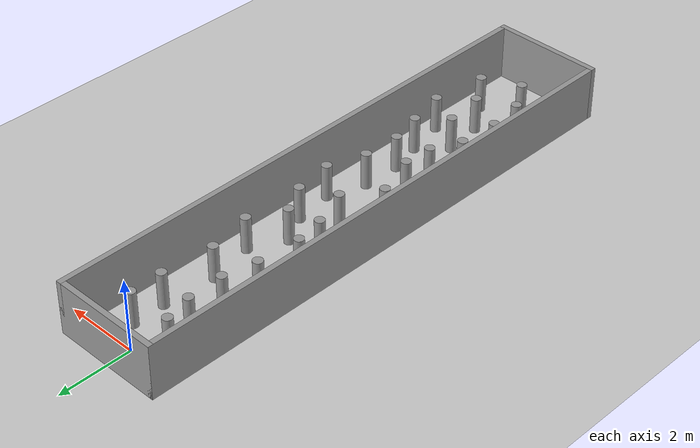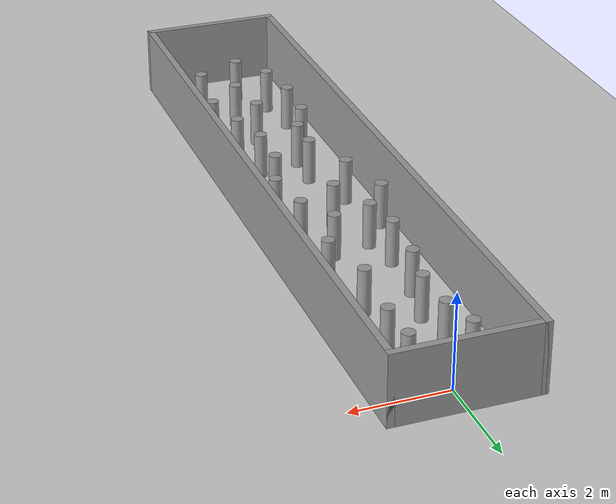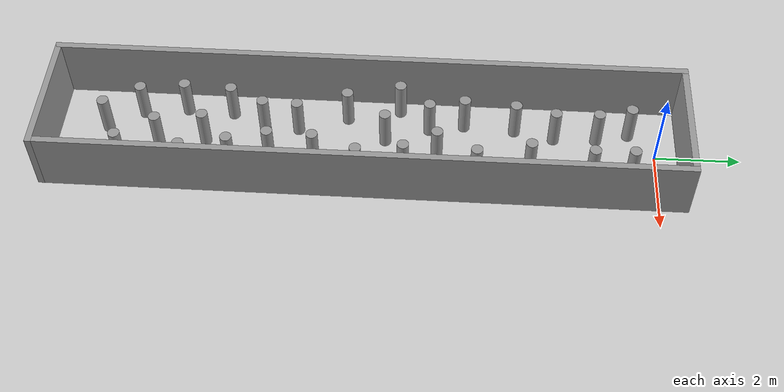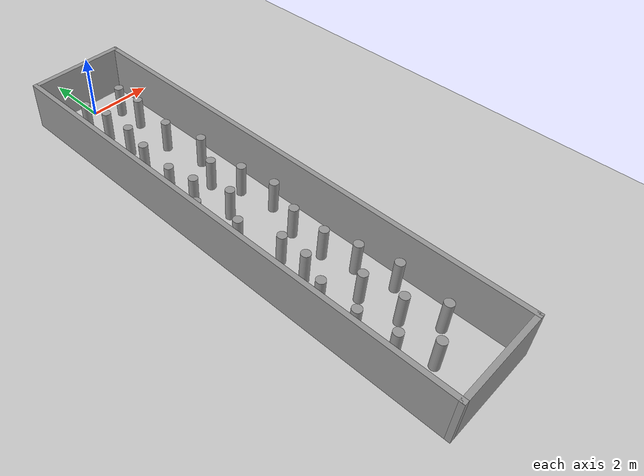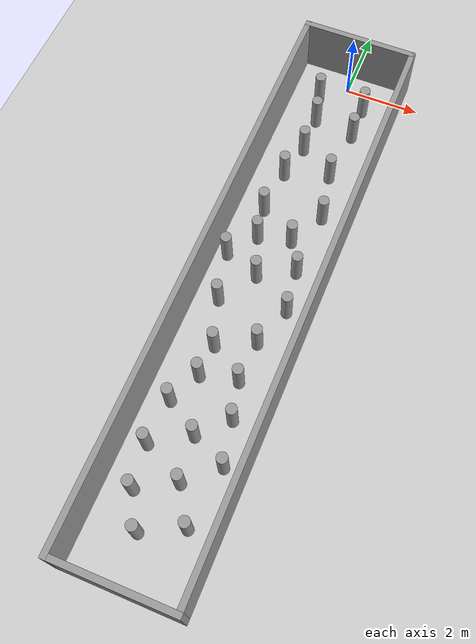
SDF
<sdf version="1.7">
 <world name="default">
  <light name="sun" type="directional">
   <pose>0 0 10 0 -0 0</pose>
   <diffuse>0.8 0.8 0.8 1</diffuse>
   <specular>0.2 0.2 0.2 1</specular>
   <attenuation>
    <range>1000</range>
    <constant>0.9</constant>
    <linear>0.01</linear>
    <quadratic>0.001</quadratic>
   </attenuation>
   <direction>-0.5 0.1 -0.9</direction>
   <spot><inner_angle>0</inner_angle><outer_angle>0</outer_angle><falloff>0</falloff></spot>
  </light>
  <model name="ground_plane">
   <static>1</static>
   <link name="link">
    <collision name="collision">
     <geometry><plane><normal>0 0 1</normal><size>100 100</size></plane></geometry>
     <surface><friction><ode><mu>100</mu><mu2>50</mu2></ode></friction></surface>
    </collision>
    <visual name="visual">
     <cast_shadows>0</cast_shadows>
     <geometry><plane><normal>0 0 1</normal><size>100 100</size></plane></geometry>
     <material>
      <script><uri>file://media/materials/scripts/gazebo.material</uri><name>Gazebo/Grey</name></script>
     </material>
    </visual>
   </link>
  </model>
  <gravity>0 0 -9.8</gravity>
  <magnetic_field>6e-06 2.3e-05 -4.2e-05</magnetic_field>
  <atmosphere type="adiabatic"/>
  <physics type="ode">
   <max_step_size>0.001</max_step_size>
   <real_time_factor>1</real_time_factor>
   <real_time_update_rate>1000</real_time_update_rate>
  </physics>
  <scene><ambient>0.4 0.4 0.4 1</ambient><background>0.7 0.7 0.7 1</background><shadows>1</shadows></scene>
  <spherical_coordinates>
   <surface_model>EARTH_WGS84</surface_model>
   <latitude_deg>0</latitude_deg>
   <longitude_deg>0</longitude_deg>
   <elevation>0</elevation>
   <heading_deg>0</heading_deg>
  </spherical_coordinates>
  <model name="long">
   <pose>0.004691 -6.82548 0 0 -0 0</pose>
   <link name="Wall_10">
    <collision name="Wall_10_Collision">
     <geometry><box><size>3.08 0.15 1.5</size></box></geometry>
     <pose>0 0 0.75 0 -0 0</pose>
    </collision>
    <visual name="Wall_10_Visual">
     <pose>0 0 0.75 0 -0 0</pose>
     <geometry><box><size>3.08 0.15 1.5</size></box></geometry>
     <material>
      <script><uri>file://media/materials/scripts/gazebo.material</uri><name>Gazebo/Grey</name></script>
      <ambient>1 1 1 1</ambient>
     </material>
     <meta><layer>0</layer></meta>
    </visual>
    <pose>-0 7.425 0 0 -0 0</pose>
   </link>
   <link name="Wall_7">
    <collision name="Wall_7_Collision">
     <geometry><box><size>15 0.15 1.5</size></box></geometry>
     <pose>0 0 0.75 0 -0 0</pose>
    </collision>
    <visual name="Wall_7_Visual">
     <pose>0 0 0.75 0 -0 0</pose>
     <geometry><box><size>15 0.15 1.5</size></box></geometry>
     <material>
      <script><uri>file://media/materials/scripts/gazebo.material</uri><name>Gazebo/Grey</name></script>
      <ambient>1 1 1 1</ambient>
     </material>
     <meta><layer>0</layer></meta>
    </visual>
    <pose>1.465 0 0 0 -0 -1.5708</pose>
   </link>
   <link name="Wall_8">
    <collision name="Wall_8_Collision">
     <geometry><box><size>3.08 0.15 1.5</size></box></geometry>
     <pose>0 0 0.75 0 -0 0</pose>
    </collision>
    <visual name="Wall_8_Visual">
     <pose>0 0 0.75 0 -0 0</pose>
     <geometry><box><size>3.08 0.15 1.5</size></box></geometry>
     <material>
      <script><uri>file://media/materials/scripts/gazebo.material</uri><name>Gazebo/Grey</name></script>
      <ambient>1 1 1 1</ambient>
     </material>
     <meta><layer>0</layer></meta>
    </visual>
    <pose>-0 -7.425 0 0 -0 3.14159</pose>
   </link>
   <link name="Wall_9">
    <collision name="Wall_9_Collision">
     <geometry><box><size>15 0.15 1.5</size></box></geometry>
     <pose>0 0 0.75 0 -0 0</pose>
    </collision>
    <visual name="Wall_9_Visual">
     <pose>0 0 0.75 0 -0 0</pose>
     <geometry><box><size>15 0.15 1.5</size></box></geometry>
     <material>
      <script><uri>file://media/materials/scripts/gazebo.material</uri><name>Gazebo/Grey</name></script>
      <ambient>1 1 1 1</ambient>
     </material>
     <meta><layer>0</layer></meta>
    </visual>
    <pose>-1.465 0 0 0 -0 1.5708</pose>
   </link>
   <static>1</static>
  </model>
  <model name="unit_cylinder">
   <pose>0.623945 -0.599358 0.499994 0 -0 -1e-06</pose>
   <link name="link">
    <inertial>
     <mass>1</mass>
     <inertia><ixx>0.145833</ixx><ixy>0</ixy><ixz>0</ixz><iyy>0.145833</iyy><iyz>0</iyz><izz>0.125</izz></inertia>
    </inertial>
    <collision name="collision">
     <geometry><cylinder><radius>0.136863</radius><length>1</length></cylinder></geometry>
    </collision>
    <visual name="visual">
     <geometry><cylinder><radius>0.136863</radius><length>1</length></cylinder></geometry>
     <material>
      <script><name>Gazebo/Grey</name><uri>file://media/materials/scripts/gazebo.material</uri></script>
     </material>
    </visual>
   </link>
  </model>
  <model name="unit_cylinder_clone">
   <pose>-0.627701 -0.597509 0.499996 0 -0 0</pose>
   <link name="link">
    <inertial>
     <mass>1</mass>
     <inertia><ixx>0.145833</ixx><ixy>0</ixy><ixz>0</ixz><iyy>0.145833</iyy><iyz>0</iyz><izz>0.125</izz></inertia>
    </inertial>
    <collision name="collision">
     <geometry><cylinder><radius>0.136863</radius><length>1</length></cylinder></geometry>
    </collision>
    <visual name="visual">
     <geometry><cylinder><radius>0.136863</radius><length>1</length></cylinder></geometry>
     <material>
      <script><name>Gazebo/Grey</name><uri>file://media/materials/scripts/gazebo.material</uri></script>
     </material>
    </visual>
   </link>
  </model>
  <model name="unit_cylinder_clone_0">
   <pose>-0.437108 -1.36673 0.499992 -0 -0 -6e-06</pose>
   <link name="link">
    <inertial>
     <mass>1</mass>
     <inertia><ixx>0.145833</ixx><ixy>0</ixy><ixz>0</ixz><iyy>0.145833</iyy><iyz>0</iyz><izz>0.125</izz></inertia>
    </inertial>
    <collision name="collision">
     <geometry><cylinder><radius>0.136863</radius><length>1</length></cylinder></geometry>
    </collision>
    <visual name="visual">
     <geometry><cylinder><radius>0.136863</radius><length>1</length></cylinder></geometry>
     <material>
      <script><name>Gazebo/Grey</name><uri>file://media/materials/scripts/gazebo.material</uri></script>
     </material>
    </visual>
   </link>
  </model>
  <model name="unit_cylinder_clone_1">
   <pose>0.640928 -1.51062 0.499992 0 -0 1.2e-05</pose>
   <link name="link">
    <inertial>
     <mass>1</mass>
     <inertia><ixx>0.145833</ixx><ixy>0</ixy><ixz>0</ixz><iyy>0.145833</iyy><iyz>0</iyz><izz>0.125</izz></inertia>
    </inertial>
    <collision name="collision">
     <geometry><cylinder><radius>0.136863</radius><length>1</length></cylinder></geometry>
    </collision>
    <visual name="visual">
     <geometry><cylinder><radius>0.136863</radius><length>1</length></cylinder></geometry>
     <material>
      <script><name>Gazebo/Grey</name><uri>file://media/materials/scripts/gazebo.material</uri></script>
     </material>
    </visual>
   </link>
  </model>
  <model name="unit_cylinder_clone_2">
   <pose>-0.41189 -2.37573 0.499996 0 -0 0</pose>
   <link name="link">
    <inertial>
     <mass>1</mass>
     <inertia><ixx>0.145833</ixx><ixy>0</ixy><ixz>0</ixz><iyy>0.145833</iyy><iyz>0</iyz><izz>0.125</izz></inertia>
    </inertial>
    <collision name="collision">
     <geometry><cylinder><radius>0.136863</radius><length>1</length></cylinder></geometry>
    </collision>
    <visual name="visual">
     <geometry><cylinder><radius>0.136863</radius><length>1</length></cylinder></geometry>
     <material>
      <script><name>Gazebo/Grey</name><uri>file://media/materials/scripts/gazebo.material</uri></script>
     </material>
    </visual>
   </link>
  </model>
  <model name="unit_cylinder_clone_3">
   <pose>0.521619 -2.95274 0.499994 0 -0 0</pose>
   <link name="link">
    <inertial>
     <mass>1</mass>
     <inertia><ixx>0.145833</ixx><ixy>0</ixy><ixz>0</ixz><iyy>0.145833</iyy><iyz>0</iyz><izz>0.125</izz></inertia>
    </inertial>
    <collision name="collision">
     <geometry><cylinder><radius>0.136863</radius><length>1</length></cylinder></geometry>
    </collision>
    <visual name="visual">
     <geometry><cylinder><radius>0.136863</radius><length>1</length></cylinder></geometry>
     <material>
      <script><name>Gazebo/Grey</name><uri>file://media/materials/scripts/gazebo.material</uri></script>
     </material>
    </visual>
   </link>
  </model>
  <model name="unit_cylinder_clone_4">
   <pose>-0.604003 -3.30381 0.499996 0 -0 0</pose>
   <link name="link">
    <inertial>
     <mass>1</mass>
     <inertia><ixx>0.145833</ixx><ixy>0</ixy><ixz>0</ixz><iyy>0.145833</iyy><iyz>0</iyz><izz>0.125</izz></inertia>
    </inertial>
    <collision name="collision">
     <geometry><cylinder><radius>0.136863</radius><length>1</length></cylinder></geometry>
    </collision>
    <visual name="visual">
     <geometry><cylinder><radius>0.136863</radius><length>1</length></cylinder></geometry>
     <material>
      <script><name>Gazebo/Grey</name><uri>file://media/materials/scripts/gazebo.material</uri></script>
     </material>
    </visual>
   </link>
  </model>
  <model name="unit_cylinder_clone_5">
   <pose>0.776809 -4.20052 0.499999 0 0 -6e-06</pose>
   <link name="link">
    <inertial>
     <mass>1</mass>
     <inertia><ixx>0.145833</ixx><ixy>0</ixy><ixz>0</ixz><iyy>0.145833</iyy><iyz>0</iyz><izz>0.125</izz></inertia>
    </inertial>
    <collision name="collision">
     <geometry><cylinder><radius>0.136863</radius><length>1</length></cylinder></geometry>
    </collision>
    <visual name="visual">
     <geometry><cylinder><radius>0.136863</radius><length>1</length></cylinder></geometry>
     <material>
      <script><name>Gazebo/Grey</name><uri>file://media/materials/scripts/gazebo.material</uri></script>
     </material>
    </visual>
   </link>
  </model>
  <model name="unit_cylinder_clone_6">
   <pose>-0.691562 -4.50897 0.499994 0 -0 -1e-06</pose>
   <link name="link">
    <inertial>
     <mass>1</mass>
     <inertia><ixx>0.145833</ixx><ixy>0</ixy><ixz>0</ixz><iyy>0.145833</iyy><iyz>0</iyz><izz>0.125</izz></inertia>
    </inertial>
    <collision name="collision">
     <geometry><cylinder><radius>0.136863</radius><length>1</length></cylinder></geometry>
    </collision>
    <visual name="visual">
     <geometry><cylinder><radius>0.136863</radius><length>1</length></cylinder></geometry>
     <material>
      <script><name>Gazebo/Grey</name><uri>file://media/materials/scripts/gazebo.material</uri></script>
     </material>
    </visual>
   </link>
  </model>
  <model name="unit_cylinder_clone_7">
   <pose>0.298292 -5.12986 0.499996 0 0 -1e-06</pose>
   <link name="link">
    <inertial>
     <mass>1</mass>
     <inertia><ixx>0.145833</ixx><ixy>0</ixy><ixz>0</ixz><iyy>0.145833</iyy><iyz>0</iyz><izz>0.125</izz></inertia>
    </inertial>
    <collision name="collision">
     <geometry><cylinder><radius>0.136863</radius><length>1</length></cylinder></geometry>
    </collision>
    <visual name="visual">
     <geometry><cylinder><radius>0.136863</radius><length>1</length></cylinder></geometry>
     <material>
      <script><name>Gazebo/Grey</name><uri>file://media/materials/scripts/gazebo.material</uri></script>
     </material>
    </visual>
   </link>
  </model>
  <model name="unit_cylinder_clone_8">
   <pose>-0.536818 -5.33411 0.499992 0 -0 -5e-06</pose>
   <link name="link">
    <inertial>
     <mass>1</mass>
     <inertia><ixx>0.145833</ixx><ixy>0</ixy><ixz>0</ixz><iyy>0.145833</iyy><iyz>0</iyz><izz>0.125</izz></inertia>
    </inertial>
    <collision name="collision">
     <geometry><cylinder><radius>0.136863</radius><length>1</length></cylinder></geometry>
    </collision>
    <visual name="visual">
     <geometry><cylinder><radius>0.136863</radius><length>1</length></cylinder></geometry>
     <material>
      <script><name>Gazebo/Grey</name><uri>file://media/materials/scripts/gazebo.material</uri></script>
     </material>
    </visual>
   </link>
  </model>
  <model name="unit_cylinder_clone_9">
   <pose>0.725632 -5.89704 0.499996 0 0 -1e-06</pose>
   <link name="link">
    <inertial>
     <mass>1</mass>
     <inertia><ixx>0.145833</ixx><ixy>0</ixy><ixz>0</ixz><iyy>0.145833</iyy><iyz>0</iyz><izz>0.125</izz></inertia>
    </inertial>
    <collision name="collision">
     <geometry><cylinder><radius>0.136863</radius><length>1</length></cylinder></geometry>
    </collision>
    <visual name="visual">
     <geometry><cylinder><radius>0.136863</radius><length>1</length></cylinder></geometry>
     <material>
      <script><name>Gazebo/Grey</name><uri>file://media/materials/scripts/gazebo.material</uri></script>
     </material>
    </visual>
   </link>
  </model>
  <model name="unit_cylinder_clone_10">
   <pose>-0.151966 -6.36521 0.499991 -0 -0 -5e-06</pose>
   <link name="link">
    <inertial>
     <mass>1</mass>
     <inertia><ixx>0.145833</ixx><ixy>0</ixy><ixz>0</ixz><iyy>0.145833</iyy><iyz>0</iyz><izz>0.125</izz></inertia>
    </inertial>
    <collision name="collision">
     <geometry><cylinder><radius>0.136863</radius><length>1</length></cylinder></geometry>
    </collision>
    <visual name="visual">
     <geometry><cylinder><radius>0.136863</radius><length>1</length></cylinder></geometry>
     <material>
      <script><name>Gazebo/Grey</name><uri>file://media/materials/scripts/gazebo.material</uri></script>
     </material>
    </visual>
   </link>
  </model>
  <model name="unit_cylinder_clone_11">
   <pose>-1.07049 -6.04695 0.499999 0 0 -5e-06</pose>
   <link name="link">
    <inertial>
     <mass>1</mass>
     <inertia><ixx>0.145833</ixx><ixy>0</ixy><ixz>0</ixz><iyy>0.145833</iyy><iyz>0</iyz><izz>0.125</izz></inertia>
    </inertial>
    <collision name="collision">
     <geometry><cylinder><radius>0.136863</radius><length>1</length></cylinder></geometry>
    </collision>
    <visual name="visual">
     <geometry><cylinder><radius>0.136863</radius><length>1</length></cylinder></geometry>
     <material>
      <script><name>Gazebo/Grey</name><uri>file://media/materials/scripts/gazebo.material</uri></script>
     </material>
    </visual>
   </link>
  </model>
  <model name="unit_cylinder_clone_12">
   <pose>0.887047 -6.98211 0.499991 0 -0 -5e-06</pose>
   <link name="link">
    <inertial>
     <mass>1</mass>
     <inertia><ixx>0.145833</ixx><ixy>0</ixy><ixz>0</ixz><iyy>0.145833</iyy><iyz>0</iyz><izz>0.125</izz></inertia>
    </inertial>
    <collision name="collision">
     <geometry><cylinder><radius>0.136863</radius><length>1</length></cylinder></geometry>
    </collision>
    <visual name="visual">
     <geometry><cylinder><radius>0.136863</radius><length>1</length></cylinder></geometry>
     <material>
      <script><name>Gazebo/Grey</name><uri>file://media/materials/scripts/gazebo.material</uri></script>
     </material>
    </visual>
   </link>
  </model>
  <model name="unit_cylinder_clone_13">
   <pose>-0.774061 -7.29133 0.499996 0 0 -1e-06</pose>
   <link name="link">
    <inertial>
     <mass>1</mass>
     <inertia><ixx>0.145833</ixx><ixy>0</ixy><ixz>0</ixz><iyy>0.145833</iyy><iyz>0</iyz><izz>0.125</izz></inertia>
    </inertial>
    <collision name="collision">
     <geometry><cylinder><radius>0.136863</radius><length>1</length></cylinder></geometry>
    </collision>
    <visual name="visual">
     <geometry><cylinder><radius>0.136863</radius><length>1</length></cylinder></geometry>
     <material>
      <script><name>Gazebo/Grey</name><uri>file://media/materials/scripts/gazebo.material</uri></script>
     </material>
    </visual>
   </link>
  </model>
  <model name="unit_cylinder_clone_14">
   <pose>0.539829 -8.00773 0.499996 0 -0 0</pose>
   <link name="link">
    <inertial>
     <mass>1</mass>
     <inertia><ixx>0.145833</ixx><ixy>0</ixy><ixz>0</ixz><iyy>0.145833</iyy><iyz>0</iyz><izz>0.125</izz></inertia>
    </inertial>
    <collision name="collision">
     <geometry><cylinder><radius>0.136863</radius><length>1</length></cylinder></geometry>
    </collision>
    <visual name="visual">
     <geometry><cylinder><radius>0.136863</radius><length>1</length></cylinder></geometry>
     <material>
      <script><name>Gazebo/Grey</name><uri>file://media/materials/scripts/gazebo.material</uri></script>
     </material>
    </visual>
   </link>
  </model>
  <model name="unit_cylinder_clone_15">
   <pose>-0.380198 -8.45079 0.499999 0 0 -4e-06</pose>
   <link name="link">
    <inertial>
     <mass>1</mass>
     <inertia><ixx>0.145833</ixx><ixy>0</ixy><ixz>0</ixz><iyy>0.145833</iyy><iyz>0</iyz><izz>0.125</izz></inertia>
    </inertial>
    <collision name="collision">
     <geometry><cylinder><radius>0.136863</radius><length>1</length></cylinder></geometry>
    </collision>
    <visual name="visual">
     <geometry><cylinder><radius>0.136863</radius><length>1</length></cylinder></geometry>
     <material>
      <script><name>Gazebo/Grey</name><uri>file://media/materials/scripts/gazebo.material</uri></script>
     </material>
    </visual>
   </link>
  </model>
  <model name="unit_cylinder_clone_16">
   <pose>0.505809 -9.05794 0.499996 0 -0 0</pose>
   <link name="link">
    <inertial>
     <mass>1</mass>
     <inertia><ixx>0.145833</ixx><ixy>0</ixy><ixz>0</ixz><iyy>0.145833</iyy><iyz>0</iyz><izz>0.125</izz></inertia>
    </inertial>
    <collision name="collision">
     <geometry><cylinder><radius>0.136863</radius><length>1</length></cylinder></geometry>
    </collision>
    <visual name="visual">
     <geometry><cylinder><radius>0.136863</radius><length>1</length></cylinder></geometry>
     <material>
      <script><name>Gazebo/Grey</name><uri>file://media/materials/scripts/gazebo.material</uri></script>
     </material>
    </visual>
   </link>
  </model>
  <model name="unit_cylinder_clone_17">
   <pose>-0.411464 -9.26873 0.499996 0 0 -1e-06</pose>
   <link name="link">
    <inertial>
     <mass>1</mass>
     <inertia><ixx>0.145833</ixx><ixy>0</ixy><ixz>0</ixz><iyy>0.145833</iyy><iyz>0</iyz><izz>0.125</izz></inertia>
    </inertial>
    <collision name="collision">
     <geometry><cylinder><radius>0.136863</radius><length>1</length></cylinder></geometry>
    </collision>
    <visual name="visual">
     <geometry><cylinder><radius>0.136863</radius><length>1</length></cylinder></geometry>
     <material>
      <script><name>Gazebo/Grey</name><uri>file://media/materials/scripts/gazebo.material</uri></script>
     </material>
    </visual>
   </link>
  </model>
  <model name="unit_cylinder_clone_18">
   <pose>0.735433 -9.97067 0.499991 -0 -0 -3e-06</pose>
   <link name="link">
    <inertial>
     <mass>1</mass>
     <inertia><ixx>0.145833</ixx><ixy>0</ixy><ixz>0</ixz><iyy>0.145833</iyy><iyz>0</iyz><izz>0.125</izz></inertia>
    </inertial>
    <collision name="collision">
     <geometry><cylinder><radius>0.136863</radius><length>1</length></cylinder></geometry>
    </collision>
    <visual name="visual">
     <geometry><cylinder><radius>0.136863</radius><length>1</length></cylinder></geometry>
     <material>
      <script><name>Gazebo/Grey</name><uri>file://media/materials/scripts/gazebo.material</uri></script>
     </material>
    </visual>
   </link>
  </model>
  <model name="unit_cylinder_clone_19">
   <pose>-0.78362 -10.0681 0.499999 0 0 -3e-06</pose>
   <link name="link">
    <inertial>
     <mass>1</mass>
     <inertia><ixx>0.145833</ixx><ixy>0</ixy><ixz>0</ixz><iyy>0.145833</iyy><iyz>0</iyz><izz>0.125</izz></inertia>
    </inertial>
    <collision name="collision">
     <geometry><cylinder><radius>0.136863</radius><length>1</length></cylinder></geometry>
    </collision>
    <visual name="visual">
     <geometry><cylinder><radius>0.136863</radius><length>1</length></cylinder></geometry>
     <material>
      <script><name>Gazebo/Grey</name><uri>file://media/materials/scripts/gazebo.material</uri></script>
     </material>
    </visual>
   </link>
  </model>
  <model name="unit_cylinder_clone_20">
   <pose>0.074563 -10.6295 0.499994 -0 -0 -0</pose>
   <link name="link">
    <inertial>
     <mass>1</mass>
     <inertia><ixx>0.145833</ixx><ixy>0</ixy><ixz>0</ixz><iyy>0.145833</iyy><iyz>0</iyz><izz>0.125</izz></inertia>
    </inertial>
    <collision name="collision">
     <geometry><cylinder><radius>0.136863</radius><length>1</length></cylinder></geometry>
    </collision>
    <visual name="visual">
     <geometry><cylinder><radius>0.136863</radius><length>1</length></cylinder></geometry>
     <material>
      <script><name>Gazebo/Grey</name><uri>file://media/materials/scripts/gazebo.material</uri></script>
     </material>
    </visual>
   </link>
  </model>
  <model name="unit_cylinder_clone_21">
   <pose>-0.844851 -11.1869 0.499999 0 0 -3e-06</pose>
   <link name="link">
    <inertial>
     <mass>1</mass>
     <inertia><ixx>0.145833</ixx><ixy>0</ixy><ixz>0</ixz><iyy>0.145833</iyy><iyz>0</iyz><izz>0.125</izz></inertia>
    </inertial>
    <collision name="collision">
     <geometry><cylinder><radius>0.136863</radius><length>1</length></cylinder></geometry>
    </collision>
    <visual name="visual">
     <geometry><cylinder><radius>0.136863</radius><length>1</length></cylinder></geometry>
     <material>
      <script><name>Gazebo/Grey</name><uri>file://media/materials/scripts/gazebo.material</uri></script>
     </material>
    </visual>
   </link>
  </model>
  <model name="unit_cylinder_clone_22">
   <pose>0.967618 -11.0407 0.499996 0 -0 0</pose>
   <link name="link">
    <inertial>
     <mass>1</mass>
     <inertia><ixx>0.145833</ixx><ixy>0</ixy><ixz>0</ixz><iyy>0.145833</iyy><iyz>0</iyz><izz>0.125</izz></inertia>
    </inertial>
    <collision name="collision">
     <geometry><cylinder><radius>0.136863</radius><length>1</length></cylinder></geometry>
    </collision>
    <visual name="visual">
     <geometry><cylinder><radius>0.136863</radius><length>1</length></cylinder></geometry>
     <material>
      <script><name>Gazebo/Grey</name><uri>file://media/materials/scripts/gazebo.material</uri></script>
     </material>
    </visual>
   </link>
  </model>
  <model name="unit_cylinder_clone_23">
   <pose>0.217607 -11.7217 0.499999 0 0 -2e-06</pose>
   <link name="link">
    <inertial>
     <mass>1</mass>
     <inertia><ixx>0.145833</ixx><ixy>0</ixy><ixz>0</ixz><iyy>0.145833</iyy><iyz>0</iyz><izz>0.125</izz></inertia>
    </inertial>
    <collision name="collision">
     <geometry><cylinder><radius>0.136863</radius><length>1</length></cylinder></geometry>
    </collision>
    <visual name="visual">
     <geometry><cylinder><radius>0.136863</radius><length>1</length></cylinder></geometry>
     <material>
      <script><name>Gazebo/Grey</name><uri>file://media/materials/scripts/gazebo.material</uri></script>
     </material>
    </visual>
   </link>
  </model>
  <model name="unit_cylinder_clone_24">
   <pose>-0.697741 -12.2216 0.499991 -0 -0 -2e-06</pose>
   <link name="link">
    <inertial>
     <mass>1</mass>
     <inertia><ixx>0.145833</ixx><ixy>0</ixy><ixz>0</ixz><iyy>0.145833</iyy><iyz>0</iyz><izz>0.125</izz></inertia>
    </inertial>
    <collision name="collision">
     <geometry><cylinder><radius>0.136863</radius><length>1</length></cylinder></geometry>
    </collision>
    <visual name="visual">
     <geometry><cylinder><radius>0.136863</radius><length>1</length></cylinder></geometry>
     <material>
      <script><name>Gazebo/Grey</name><uri>file://media/materials/scripts/gazebo.material</uri></script>
     </material>
    </visual>
   </link>
  </model>
  <model name="unit_cylinder_clone_25">
   <pose>0.771121 -12.5554 0.499999 0 0 -2e-06</pose>
   <link name="link">
    <inertial>
     <mass>1</mass>
     <inertia><ixx>0.145833</ixx><ixy>0</ixy><ixz>0</ixz><iyy>0.145833</iyy><iyz>0</iyz><izz>0.125</izz></inertia>
    </inertial>
    <collision name="collision">
     <geometry><cylinder><radius>0.136863</radius><length>1</length></cylinder></geometry>
    </collision>
    <visual name="visual">
     <geometry><cylinder><radius>0.136863</radius><length>1</length></cylinder></geometry>
     <material>
      <script><name>Gazebo/Grey</name><uri>file://media/materials/scripts/gazebo.material</uri></script>
     </material>
    </visual>
   </link>
  </model>
  <model name="unit_cylinder_clone_26">
   <pose>-0.210209 -13.0232 0.499991 0 -0 -2e-06</pose>
   <link name="link">
    <inertial>
     <mass>1</mass>
     <inertia><ixx>0.145833</ixx><ixy>0</ixy><ixz>0</ixz><iyy>0.145833</iyy><iyz>0</iyz><izz>0.125</izz></inertia>
    </inertial>
    <collision name="collision">
     <geometry><cylinder><radius>0.136863</radius><length>1</length></cylinder></geometry>
    </collision>
    <visual name="visual">
     <geometry><cylinder><radius>0.136863</radius><length>1</length></cylinder></geometry>
     <material>
      <script><name>Gazebo/Grey</name><uri>file://media/materials/scripts/gazebo.material</uri></script>
     </material>
    </visual>
   </link>
  </model>
 </world>
</sdf>
